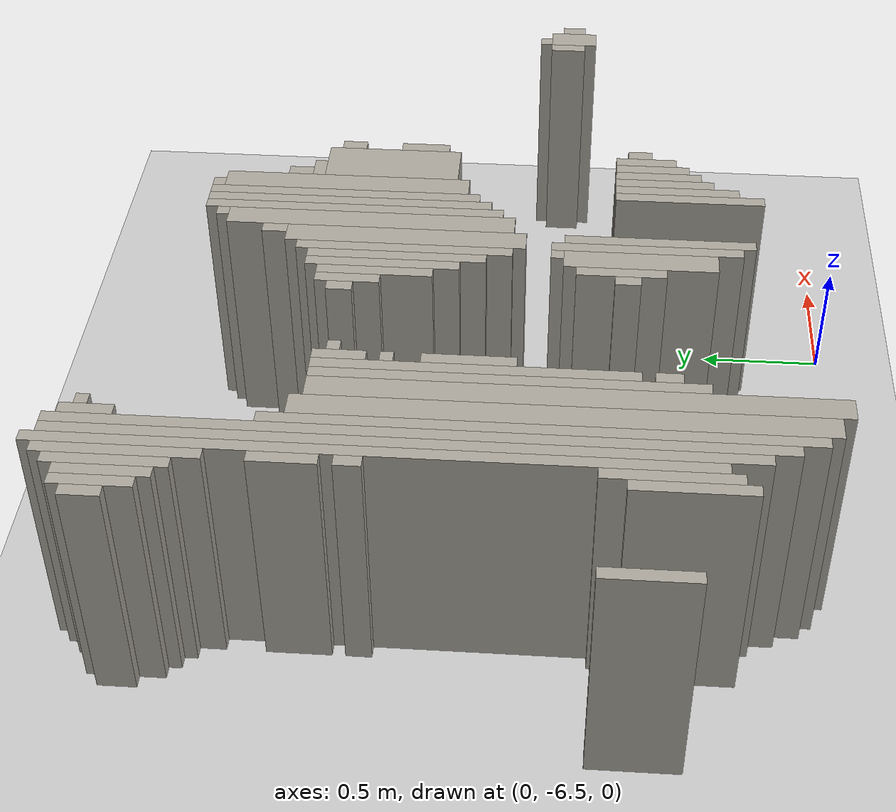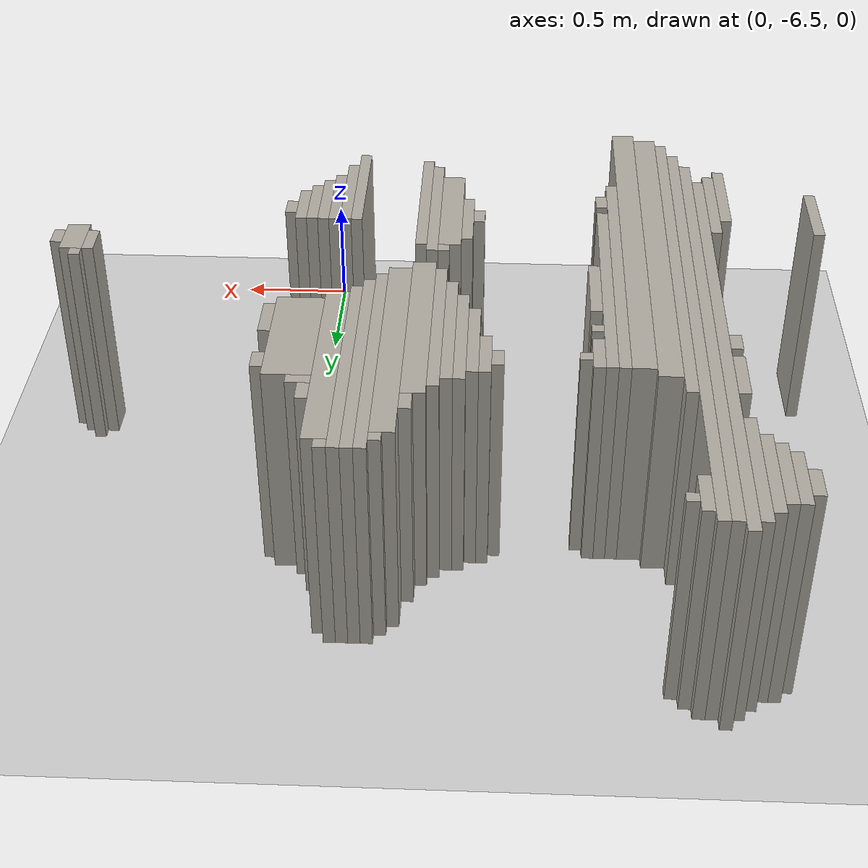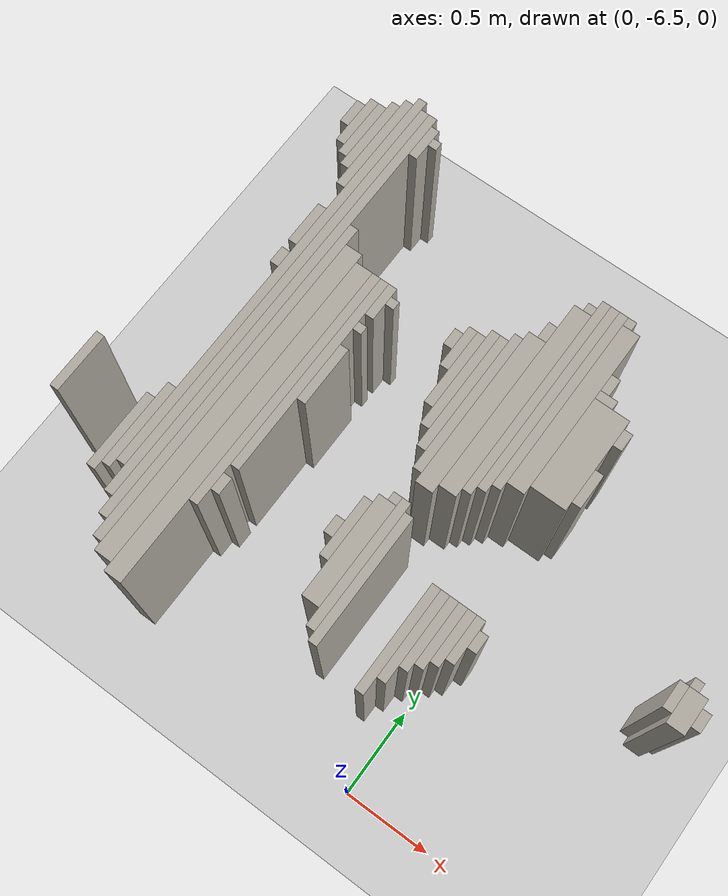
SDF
<sdf version="1.6">
 <world name="fr079_office">
  <include><uri>model://sun</uri></include>
  <include><uri>model://ground_plane</uri></include>
  <model name="fr079_office_walls">
   <static>true</static>
   <link name="w0321">
    <pose>-1.398 -5.431 0.500 0 0 0</pose>
    <collision name="c"><geometry><box><size>0.100 1.950 1.000</size></box></geometry></collision>
    <visual name="v">
     <geometry><box><size>0.100 1.950 1.000</size></box></geometry>
     <material><ambient>0.68 0.66 0.62 1</ambient><diffuse>0.68 0.66 0.62 1</diffuse></material>
    </visual>
   </link>
   <link name="w0339">
    <pose>-1.498 -5.381 0.500 0 0 0</pose>
    <collision name="c"><geometry><box><size>0.100 1.950 1.000</size></box></geometry></collision>
    <visual name="v">
     <geometry><box><size>0.100 1.950 1.000</size></box></geometry>
     <material><ambient>0.68 0.66 0.62 1</ambient><diffuse>0.68 0.66 0.62 1</diffuse></material>
    </visual>
   </link>
   <link name="w0353">
    <pose>-1.573 -5.306 0.500 0 0 0</pose>
    <collision name="c"><geometry><box><size>0.050 2.000 1.000</size></box></geometry></collision>
    <visual name="v">
     <geometry><box><size>0.050 2.000 1.000</size></box></geometry>
     <material><ambient>0.68 0.66 0.62 1</ambient><diffuse>0.68 0.66 0.62 1</diffuse></material>
    </visual>
   </link>
   <link name="w0378">
    <pose>-1.623 -4.881 0.500 0 0 0</pose>
    <collision name="c"><geometry><box><size>0.050 2.650 1.000</size></box></geometry></collision>
    <visual name="v">
     <geometry><box><size>0.050 2.650 1.000</size></box></geometry>
     <material><ambient>0.68 0.66 0.62 1</ambient><diffuse>0.68 0.66 0.62 1</diffuse></material>
    </visual>
   </link>
   <link name="w0385">
    <pose>-0.173 -5.856 0.500 0 0 0</pose>
    <collision name="c"><geometry><box><size>0.050 0.600 1.000</size></box></geometry></collision>
    <visual name="v">
     <geometry><box><size>0.050 0.600 1.000</size></box></geometry>
     <material><ambient>0.68 0.66 0.62 1</ambient><diffuse>0.68 0.66 0.62 1</diffuse></material>
    </visual>
   </link>
   <link name="w0396">
    <pose>-1.673 -4.831 0.500 0 0 0</pose>
    <collision name="c"><geometry><box><size>0.050 2.550 1.000</size></box></geometry></collision>
    <visual name="v">
     <geometry><box><size>0.050 2.550 1.000</size></box></geometry>
     <material><ambient>0.68 0.66 0.62 1</ambient><diffuse>0.68 0.66 0.62 1</diffuse></material>
    </visual>
   </link>
   <link name="w0397">
    <pose>-0.473 -5.731 0.500 0 0 0</pose>
    <collision name="c"><geometry><box><size>0.050 0.750 1.000</size></box></geometry></collision>
    <visual name="v">
     <geometry><box><size>0.050 0.750 1.000</size></box></geometry>
     <material><ambient>0.68 0.66 0.62 1</ambient><diffuse>0.68 0.66 0.62 1</diffuse></material>
    </visual>
   </link>
   <link name="w0408">
    <pose>-1.823 -5.831 0.500 0 0 0</pose>
    <collision name="c"><geometry><box><size>0.050 0.450 1.000</size></box></geometry></collision>
    <visual name="v">
     <geometry><box><size>0.050 0.450 1.000</size></box></geometry>
     <material><ambient>0.68 0.66 0.62 1</ambient><diffuse>0.68 0.66 0.62 1</diffuse></material>
    </visual>
   </link>
   <link name="w0411">
    <pose>-0.523 -5.681 0.500 0 0 0</pose>
    <collision name="c"><geometry><box><size>0.050 0.750 1.000</size></box></geometry></collision>
    <visual name="v">
     <geometry><box><size>0.050 0.750 1.000</size></box></geometry>
     <material><ambient>0.68 0.66 0.62 1</ambient><diffuse>0.68 0.66 0.62 1</diffuse></material>
    </visual>
   </link>
   <link name="w0412">
    <pose>-0.123 -5.806 0.500 0 0 0</pose>
    <collision name="c"><geometry><box><size>0.050 0.500 1.000</size></box></geometry></collision>
    <visual name="v">
     <geometry><box><size>0.050 0.500 1.000</size></box></geometry>
     <material><ambient>0.68 0.66 0.62 1</ambient><diffuse>0.68 0.66 0.62 1</diffuse></material>
    </visual>
   </link>
   <link name="w0424">
    <pose>-1.773 -5.756 0.500 0 0 0</pose>
    <collision name="c"><geometry><box><size>0.050 0.500 1.000</size></box></geometry></collision>
    <visual name="v">
     <geometry><box><size>0.050 0.500 1.000</size></box></geometry>
     <material><ambient>0.68 0.66 0.62 1</ambient><diffuse>0.68 0.66 0.62 1</diffuse></material>
    </visual>
   </link>
   <link name="w0435">
    <pose>-1.723 -4.731 0.500 0 0 0</pose>
    <collision name="c"><geometry><box><size>0.050 2.450 1.000</size></box></geometry></collision>
    <visual name="v">
     <geometry><box><size>0.050 2.450 1.000</size></box></geometry>
     <material><ambient>0.68 0.66 0.62 1</ambient><diffuse>0.68 0.66 0.62 1</diffuse></material>
    </visual>
   </link>
   <link name="w0436">
    <pose>-0.598 -5.656 0.500 0 0 0</pose>
    <collision name="c"><geometry><box><size>0.100 0.600 1.000</size></box></geometry></collision>
    <visual name="v">
     <geometry><box><size>0.100 0.600 1.000</size></box></geometry>
     <material><ambient>0.68 0.66 0.62 1</ambient><diffuse>0.68 0.66 0.62 1</diffuse></material>
    </visual>
   </link>
   <link name="w0437">
    <pose>-0.073 -5.756 0.500 0 0 0</pose>
    <collision name="c"><geometry><box><size>0.050 0.400 1.000</size></box></geometry></collision>
    <visual name="v">
     <geometry><box><size>0.050 0.400 1.000</size></box></geometry>
     <material><ambient>0.68 0.66 0.62 1</ambient><diffuse>0.68 0.66 0.62 1</diffuse></material>
    </visual>
   </link>
   <link name="w0453">
    <pose>-1.323 -5.181 0.500 0 0 0</pose>
    <collision name="c"><geometry><box><size>0.050 1.450 1.000</size></box></geometry></collision>
    <visual name="v">
     <geometry><box><size>0.050 1.450 1.000</size></box></geometry>
     <material><ambient>0.68 0.66 0.62 1</ambient><diffuse>0.68 0.66 0.62 1</diffuse></material>
    </visual>
   </link>
   <link name="w0455">
    <pose>-0.023 -5.731 0.500 0 0 0</pose>
    <collision name="c"><geometry><box><size>0.050 0.350 1.000</size></box></geometry></collision>
    <visual name="v">
     <geometry><box><size>0.050 0.350 1.000</size></box></geometry>
     <material><ambient>0.68 0.66 0.62 1</ambient><diffuse>0.68 0.66 0.62 1</diffuse></material>
    </visual>
   </link>
   <link name="w0468">
    <pose>-2.223 -5.681 0.500 0 0 0</pose>
    <collision name="c"><geometry><box><size>0.050 0.350 1.000</size></box></geometry></collision>
    <visual name="v">
     <geometry><box><size>0.050 0.350 1.000</size></box></geometry>
     <material><ambient>0.68 0.66 0.62 1</ambient><diffuse>0.68 0.66 0.62 1</diffuse></material>
    </visual>
   </link>
   <link name="w0469">
    <pose>0.027 -5.706 0.500 0 0 0</pose>
    <collision name="c"><geometry><box><size>0.050 0.300 1.000</size></box></geometry></collision>
    <visual name="v">
     <geometry><box><size>0.050 0.300 1.000</size></box></geometry>
     <material><ambient>0.68 0.66 0.62 1</ambient><diffuse>0.68 0.66 0.62 1</diffuse></material>
    </visual>
   </link>
   <link name="w0482">
    <pose>-1.273 -5.756 0.500 0 0 0</pose>
    <collision name="c"><geometry><box><size>0.050 0.100 1.000</size></box></geometry></collision>
    <visual name="v">
     <geometry><box><size>0.050 0.100 1.000</size></box></geometry>
     <material><ambient>0.68 0.66 0.62 1</ambient><diffuse>0.68 0.66 0.62 1</diffuse></material>
    </visual>
   </link>
   <link name="w0483">
    <pose>0.077 -5.681 0.500 0 0 0</pose>
    <collision name="c"><geometry><box><size>0.050 0.250 1.000</size></box></geometry></collision>
    <visual name="v">
     <geometry><box><size>0.050 0.250 1.000</size></box></geometry>
     <material><ambient>0.68 0.66 0.62 1</ambient><diffuse>0.68 0.66 0.62 1</diffuse></material>
    </visual>
   </link>
   <link name="w0498">
    <pose>-0.673 -5.581 0.500 0 0 0</pose>
    <collision name="c"><geometry><box><size>0.050 0.350 1.000</size></box></geometry></collision>
    <visual name="v">
     <geometry><box><size>0.050 0.350 1.000</size></box></geometry>
     <material><ambient>0.68 0.66 0.62 1</ambient><diffuse>0.68 0.66 0.62 1</diffuse></material>
    </visual>
   </link>
   <link name="w0513">
    <pose>0.127 -5.656 0.500 0 0 0</pose>
    <collision name="c"><geometry><box><size>0.050 0.100 1.000</size></box></geometry></collision>
    <visual name="v">
     <geometry><box><size>0.050 0.100 1.000</size></box></geometry>
     <material><ambient>0.68 0.66 0.62 1</ambient><diffuse>0.68 0.66 0.62 1</diffuse></material>
    </visual>
   </link>
   <link name="w0521">
    <pose>-1.273 -5.056 0.500 0 0 0</pose>
    <collision name="c"><geometry><box><size>0.050 1.200 1.000</size></box></geometry></collision>
    <visual name="v">
     <geometry><box><size>0.050 1.200 1.000</size></box></geometry>
     <material><ambient>0.68 0.66 0.62 1</ambient><diffuse>0.68 0.66 0.62 1</diffuse></material>
    </visual>
   </link>
   <link name="w0522">
    <pose>-0.723 -5.606 0.500 0 0 0</pose>
    <collision name="c"><geometry><box><size>0.050 0.100 1.000</size></box></geometry></collision>
    <visual name="v">
     <geometry><box><size>0.050 0.100 1.000</size></box></geometry>
     <material><ambient>0.68 0.66 0.62 1</ambient><diffuse>0.68 0.66 0.62 1</diffuse></material>
    </visual>
   </link>
   <link name="w0566">
    <pose>1.052 -5.356 0.500 0 0 0</pose>
    <collision name="c"><geometry><box><size>0.100 0.200 1.000</size></box></geometry></collision>
    <visual name="v">
     <geometry><box><size>0.100 0.200 1.000</size></box></geometry>
     <material><ambient>0.68 0.66 0.62 1</ambient><diffuse>0.68 0.66 0.62 1</diffuse></material>
    </visual>
   </link>
   <link name="w0578">
    <pose>0.977 -5.331 0.500 0 0 0</pose>
    <collision name="c"><geometry><box><size>0.050 0.150 1.000</size></box></geometry></collision>
    <visual name="v">
     <geometry><box><size>0.050 0.150 1.000</size></box></geometry>
     <material><ambient>0.68 0.66 0.62 1</ambient><diffuse>0.68 0.66 0.62 1</diffuse></material>
    </visual>
   </link>
   <link name="w0579">
    <pose>1.127 -5.356 0.500 0 0 0</pose>
    <collision name="c"><geometry><box><size>0.050 0.100 1.000</size></box></geometry></collision>
    <visual name="v">
     <geometry><box><size>0.050 0.100 1.000</size></box></geometry>
     <material><ambient>0.68 0.66 0.62 1</ambient><diffuse>0.68 0.66 0.62 1</diffuse></material>
    </visual>
   </link>
   <link name="w0591">
    <pose>-0.573 -5.331 0.500 0 0 0</pose>
    <collision name="c"><geometry><box><size>0.050 0.050 1.000</size></box></geometry></collision>
    <visual name="v">
     <geometry><box><size>0.050 0.050 1.000</size></box></geometry>
     <material><ambient>0.68 0.66 0.62 1</ambient><diffuse>0.68 0.66 0.62 1</diffuse></material>
    </visual>
   </link>
   <link name="w0622">
    <pose>1.027 -5.231 0.500 0 0 0</pose>
    <collision name="c"><geometry><box><size>0.050 0.050 1.000</size></box></geometry></collision>
    <visual name="v">
     <geometry><box><size>0.050 0.050 1.000</size></box></geometry>
     <material><ambient>0.68 0.66 0.62 1</ambient><diffuse>0.68 0.66 0.62 1</diffuse></material>
    </visual>
   </link>
   <link name="w0638">
    <pose>-1.223 -5.031 0.500 0 0 0</pose>
    <collision name="c"><geometry><box><size>0.050 0.350 1.000</size></box></geometry></collision>
    <visual name="v">
     <geometry><box><size>0.050 0.350 1.000</size></box></geometry>
     <material><ambient>0.68 0.66 0.62 1</ambient><diffuse>0.68 0.66 0.62 1</diffuse></material>
    </visual>
   </link>
   <link name="w0639">
    <pose>-0.498 -4.731 0.500 0 0 0</pose>
    <collision name="c"><geometry><box><size>0.100 0.950 1.000</size></box></geometry></collision>
    <visual name="v">
     <geometry><box><size>0.100 0.950 1.000</size></box></geometry>
     <material><ambient>0.68 0.66 0.62 1</ambient><diffuse>0.68 0.66 0.62 1</diffuse></material>
    </visual>
   </link>
   <link name="w0653">
    <pose>-0.573 -4.731 0.500 0 0 0</pose>
    <collision name="c"><geometry><box><size>0.050 0.850 1.000</size></box></geometry></collision>
    <visual name="v">
     <geometry><box><size>0.050 0.850 1.000</size></box></geometry>
     <material><ambient>0.68 0.66 0.62 1</ambient><diffuse>0.68 0.66 0.62 1</diffuse></material>
    </visual>
   </link>
   <link name="w0654">
    <pose>-0.398 -4.581 0.500 0 0 0</pose>
    <collision name="c"><geometry><box><size>0.100 1.150 1.000</size></box></geometry></collision>
    <visual name="v">
     <geometry><box><size>0.100 1.150 1.000</size></box></geometry>
     <material><ambient>0.68 0.66 0.62 1</ambient><diffuse>0.68 0.66 0.62 1</diffuse></material>
    </visual>
   </link>
   <link name="w0663">
    <pose>-0.323 -4.506 0.500 0 0 0</pose>
    <collision name="c"><geometry><box><size>0.050 1.200 1.000</size></box></geometry></collision>
    <visual name="v">
     <geometry><box><size>0.050 1.200 1.000</size></box></geometry>
     <material><ambient>0.68 0.66 0.62 1</ambient><diffuse>0.68 0.66 0.62 1</diffuse></material>
    </visual>
   </link>
   <link name="w0675">
    <pose>-0.623 -4.706 0.500 0 0 0</pose>
    <collision name="c"><geometry><box><size>0.050 0.700 1.000</size></box></geometry></collision>
    <visual name="v">
     <geometry><box><size>0.050 0.700 1.000</size></box></geometry>
     <material><ambient>0.68 0.66 0.62 1</ambient><diffuse>0.68 0.66 0.62 1</diffuse></material>
    </visual>
   </link>
   <link name="w0676">
    <pose>-0.273 -4.481 0.500 0 0 0</pose>
    <collision name="c"><geometry><box><size>0.050 1.150 1.000</size></box></geometry></collision>
    <visual name="v">
     <geometry><box><size>0.050 1.150 1.000</size></box></geometry>
     <material><ambient>0.68 0.66 0.62 1</ambient><diffuse>0.68 0.66 0.62 1</diffuse></material>
    </visual>
   </link>
   <link name="w0684">
    <pose>-0.223 -4.456 0.500 0 0 0</pose>
    <collision name="c"><geometry><box><size>0.050 1.100 1.000</size></box></geometry></collision>
    <visual name="v">
     <geometry><box><size>0.050 1.100 1.000</size></box></geometry>
     <material><ambient>0.68 0.66 0.62 1</ambient><diffuse>0.68 0.66 0.62 1</diffuse></material>
    </visual>
   </link>
   <link name="w0696">
    <pose>-0.673 -4.656 0.500 0 0 0</pose>
    <collision name="c"><geometry><box><size>0.050 0.600 1.000</size></box></geometry></collision>
    <visual name="v">
     <geometry><box><size>0.050 0.600 1.000</size></box></geometry>
     <material><ambient>0.68 0.66 0.62 1</ambient><diffuse>0.68 0.66 0.62 1</diffuse></material>
    </visual>
   </link>
   <link name="w0697">
    <pose>-0.148 -4.456 0.500 0 0 0</pose>
    <collision name="c"><geometry><box><size>0.100 1.000 1.000</size></box></geometry></collision>
    <visual name="v">
     <geometry><box><size>0.100 1.000 1.000</size></box></geometry>
     <material><ambient>0.68 0.66 0.62 1</ambient><diffuse>0.68 0.66 0.62 1</diffuse></material>
    </visual>
   </link>
   <link name="w0705">
    <pose>0.002 -4.631 0.500 0 0 0</pose>
    <collision name="c"><geometry><box><size>0.200 0.550 1.000</size></box></geometry></collision>
    <visual name="v">
     <geometry><box><size>0.200 0.550 1.000</size></box></geometry>
     <material><ambient>0.68 0.66 0.62 1</ambient><diffuse>0.68 0.66 0.62 1</diffuse></material>
    </visual>
   </link>
   <link name="w0719">
    <pose>-0.723 -4.631 0.500 0 0 0</pose>
    <collision name="c"><geometry><box><size>0.050 0.450 1.000</size></box></geometry></collision>
    <visual name="v">
     <geometry><box><size>0.050 0.450 1.000</size></box></geometry>
     <material><ambient>0.68 0.66 0.62 1</ambient><diffuse>0.68 0.66 0.62 1</diffuse></material>
    </visual>
   </link>
   <link name="w0720">
    <pose>0.127 -4.756 0.500 0 0 0</pose>
    <collision name="c"><geometry><box><size>0.050 0.200 1.000</size></box></geometry></collision>
    <visual name="v">
     <geometry><box><size>0.050 0.200 1.000</size></box></geometry>
     <material><ambient>0.68 0.66 0.62 1</ambient><diffuse>0.68 0.66 0.62 1</diffuse></material>
    </visual>
   </link>
   <link name="w0743">
    <pose>-1.223 -4.731 0.500 0 0 0</pose>
    <collision name="c"><geometry><box><size>0.050 0.050 1.000</size></box></geometry></collision>
    <visual name="v">
     <geometry><box><size>0.050 0.050 1.000</size></box></geometry>
     <material><ambient>0.68 0.66 0.62 1</ambient><diffuse>0.68 0.66 0.62 1</diffuse></material>
    </visual>
   </link>
   <link name="w0759">
    <pose>-1.773 -4.656 0.500 0 0 0</pose>
    <collision name="c"><geometry><box><size>0.050 0.100 1.000</size></box></geometry></collision>
    <visual name="v">
     <geometry><box><size>0.050 0.100 1.000</size></box></geometry>
     <material><ambient>0.68 0.66 0.62 1</ambient><diffuse>0.68 0.66 0.62 1</diffuse></material>
    </visual>
   </link>
   <link name="w0772">
    <pose>-1.223 -4.556 0.500 0 0 0</pose>
    <collision name="c"><geometry><box><size>0.050 0.200 1.000</size></box></geometry></collision>
    <visual name="v">
     <geometry><box><size>0.050 0.200 1.000</size></box></geometry>
     <material><ambient>0.68 0.66 0.62 1</ambient><diffuse>0.68 0.66 0.62 1</diffuse></material>
    </visual>
   </link>
   <link name="w0773">
    <pose>-0.773 -4.531 0.500 0 0 0</pose>
    <collision name="c"><geometry><box><size>0.050 0.250 1.000</size></box></geometry></collision>
    <visual name="v">
     <geometry><box><size>0.050 0.250 1.000</size></box></geometry>
     <material><ambient>0.68 0.66 0.62 1</ambient><diffuse>0.68 0.66 0.62 1</diffuse></material>
    </visual>
   </link>
   <link name="w0806">
    <pose>-1.773 -4.431 0.500 0 0 0</pose>
    <collision name="c"><geometry><box><size>0.050 0.250 1.000</size></box></geometry></collision>
    <visual name="v">
     <geometry><box><size>0.050 0.250 1.000</size></box></geometry>
     <material><ambient>0.68 0.66 0.62 1</ambient><diffuse>0.68 0.66 0.62 1</diffuse></material>
    </visual>
   </link>
   <link name="w0807">
    <pose>-1.173 -4.531 0.500 0 0 0</pose>
    <collision name="c"><geometry><box><size>0.050 0.050 1.000</size></box></geometry></collision>
    <visual name="v">
     <geometry><box><size>0.050 0.050 1.000</size></box></geometry>
     <material><ambient>0.68 0.66 0.62 1</ambient><diffuse>0.68 0.66 0.62 1</diffuse></material>
    </visual>
   </link>
   <link name="w0808">
    <pose>-0.823 -4.506 0.500 0 0 0</pose>
    <collision name="c"><geometry><box><size>0.050 0.100 1.000</size></box></geometry></collision>
    <visual name="v">
     <geometry><box><size>0.050 0.100 1.000</size></box></geometry>
     <material><ambient>0.68 0.66 0.62 1</ambient><diffuse>0.68 0.66 0.62 1</diffuse></material>
    </visual>
   </link>
   <link name="w0822">
    <pose>0.127 -4.456 0.500 0 0 0</pose>
    <collision name="c"><geometry><box><size>0.050 0.100 1.000</size></box></geometry></collision>
    <visual name="v">
     <geometry><box><size>0.050 0.100 1.000</size></box></geometry>
     <material><ambient>0.68 0.66 0.62 1</ambient><diffuse>0.68 0.66 0.62 1</diffuse></material>
    </visual>
   </link>
   <link name="w0867">
    <pose>-0.048 -4.331 0.500 0 0 0</pose>
    <collision name="c"><geometry><box><size>0.100 0.050 1.000</size></box></geometry></collision>
    <visual name="v">
     <geometry><box><size>0.100 0.050 1.000</size></box></geometry>
     <material><ambient>0.68 0.66 0.62 1</ambient><diffuse>0.68 0.66 0.62 1</diffuse></material>
    </visual>
   </link>
   <link name="w0880">
    <pose>-0.073 -4.256 0.500 0 0 0</pose>
    <collision name="c"><geometry><box><size>0.050 0.100 1.000</size></box></geometry></collision>
    <visual name="v">
     <geometry><box><size>0.050 0.100 1.000</size></box></geometry>
     <material><ambient>0.68 0.66 0.62 1</ambient><diffuse>0.68 0.66 0.62 1</diffuse></material>
    </visual>
   </link>
   <link name="w0893">
    <pose>-0.473 -4.206 0.500 0 0 0</pose>
    <collision name="c"><geometry><box><size>0.050 0.100 1.000</size></box></geometry></collision>
    <visual name="v">
     <geometry><box><size>0.050 0.100 1.000</size></box></geometry>
     <material><ambient>0.68 0.66 0.62 1</ambient><diffuse>0.68 0.66 0.62 1</diffuse></material>
    </visual>
   </link>
   <link name="w0930">
    <pose>-1.773 -3.856 0.500 0 0 0</pose>
    <collision name="c"><geometry><box><size>0.050 0.600 1.000</size></box></geometry></collision>
    <visual name="v">
     <geometry><box><size>0.050 0.600 1.000</size></box></geometry>
     <material><ambient>0.68 0.66 0.62 1</ambient><diffuse>0.68 0.66 0.62 1</diffuse></material>
    </visual>
   </link>
   <link name="w0956">
    <pose>-1.823 -3.831 0.500 0 0 0</pose>
    <collision name="c"><geometry><box><size>0.050 0.450 1.000</size></box></geometry></collision>
    <visual name="v">
     <geometry><box><size>0.050 0.450 1.000</size></box></geometry>
     <material><ambient>0.68 0.66 0.62 1</ambient><diffuse>0.68 0.66 0.62 1</diffuse></material>
    </visual>
   </link>
   <link name="w0966">
    <pose>-1.873 -3.831 0.500 0 0 0</pose>
    <collision name="c"><geometry><box><size>0.050 0.350 1.000</size></box></geometry></collision>
    <visual name="v">
     <geometry><box><size>0.050 0.350 1.000</size></box></geometry>
     <material><ambient>0.68 0.66 0.62 1</ambient><diffuse>0.68 0.66 0.62 1</diffuse></material>
    </visual>
   </link>
   <link name="w0967">
    <pose>-0.373 -3.981 0.500 0 0 0</pose>
    <collision name="c"><geometry><box><size>0.050 0.050 1.000</size></box></geometry></collision>
    <visual name="v">
     <geometry><box><size>0.050 0.050 1.000</size></box></geometry>
     <material><ambient>0.68 0.66 0.62 1</ambient><diffuse>0.68 0.66 0.62 1</diffuse></material>
    </visual>
   </link>
   <link name="w0980">
    <pose>-1.923 -3.806 0.500 0 0 0</pose>
    <collision name="c"><geometry><box><size>0.050 0.300 1.000</size></box></geometry></collision>
    <visual name="v">
     <geometry><box><size>0.050 0.300 1.000</size></box></geometry>
     <material><ambient>0.68 0.66 0.62 1</ambient><diffuse>0.68 0.66 0.62 1</diffuse></material>
    </visual>
   </link>
   <link name="w0981">
    <pose>-0.173 -3.931 0.500 0 0 0</pose>
    <collision name="c"><geometry><box><size>0.050 0.050 1.000</size></box></geometry></collision>
    <visual name="v">
     <geometry><box><size>0.050 0.050 1.000</size></box></geometry>
     <material><ambient>0.68 0.66 0.62 1</ambient><diffuse>0.68 0.66 0.62 1</diffuse></material>
    </visual>
   </link>
   <link name="w1007">
    <pose>-1.973 -3.781 0.500 0 0 0</pose>
    <collision name="c"><geometry><box><size>0.050 0.150 1.000</size></box></geometry></collision>
    <visual name="v">
     <geometry><box><size>0.050 0.150 1.000</size></box></geometry>
     <material><ambient>0.68 0.66 0.62 1</ambient><diffuse>0.68 0.66 0.62 1</diffuse></material>
    </visual>
   </link>
   <link name="w1023">
    <pose>-1.573 -3.706 0.500 0 0 0</pose>
    <collision name="c"><geometry><box><size>0.050 0.200 1.000</size></box></geometry></collision>
    <visual name="v">
     <geometry><box><size>0.050 0.200 1.000</size></box></geometry>
     <material><ambient>0.68 0.66 0.62 1</ambient><diffuse>0.68 0.66 0.62 1</diffuse></material>
    </visual>
   </link>
   <link name="w1049">
    <pose>-1.523 -3.681 0.500 0 0 0</pose>
    <collision name="c"><geometry><box><size>0.050 0.050 1.000</size></box></geometry></collision>
    <visual name="v">
     <geometry><box><size>0.050 0.050 1.000</size></box></geometry>
     <material><ambient>0.68 0.66 0.62 1</ambient><diffuse>0.68 0.66 0.62 1</diffuse></material>
    </visual>
   </link>
  </model>
 </world>
</sdf>
